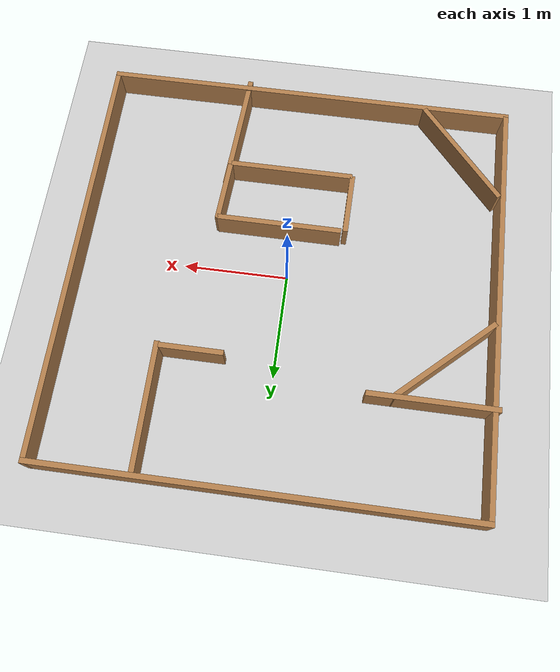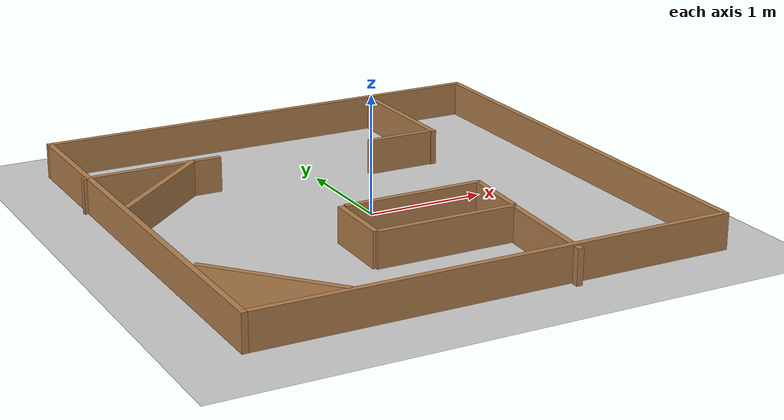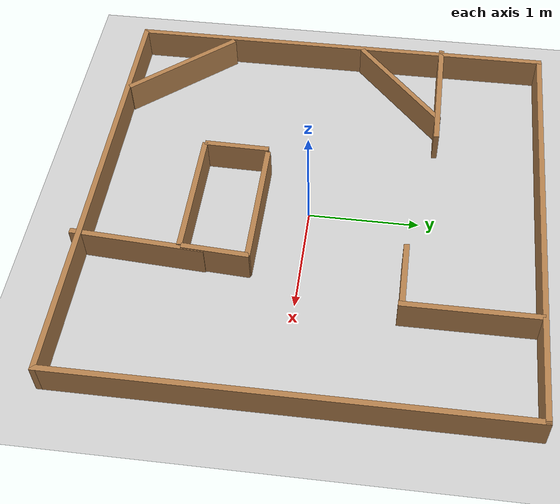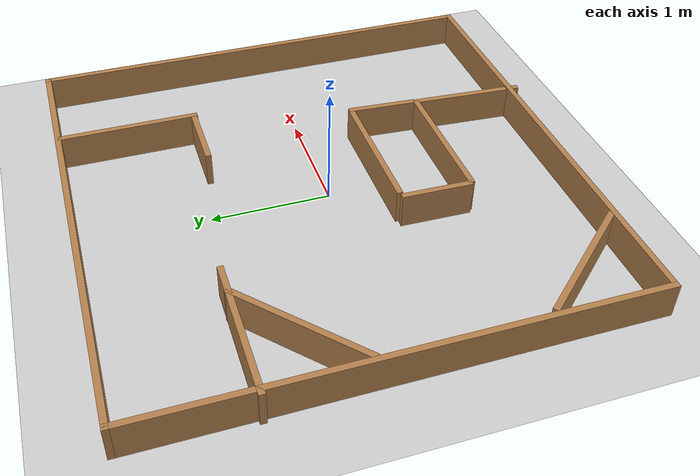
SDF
<sdf version="1.7">
 <world name="default">
  <light name="sun" type="directional">
   <pose>0 0 10 0 -0 0</pose>
   <diffuse>0.8 0.8 0.8 1</diffuse>
   <specular>0.2 0.2 0.2 1</specular>
   <attenuation>
    <range>1000</range>
    <constant>0.9</constant>
    <linear>0.01</linear>
    <quadratic>0.001</quadratic>
   </attenuation>
   <direction>-0.5 0.1 -0.9</direction>
   <spot><inner_angle>0</inner_angle><outer_angle>0</outer_angle><falloff>0</falloff></spot>
  </light>
  <model name="ground_plane">
   <static>1</static>
   <link name="link">
    <collision name="collision">
     <geometry><plane><normal>0 0 1</normal><size>100 100</size></plane></geometry>
     <surface>
      <contact><collide_bitmask>65535</collide_bitmask></contact>
      <friction><ode><mu>100</mu><mu2>50</mu2></ode></friction>
     </surface>
    </collision>
    <visual name="visual">
     <cast_shadows>0</cast_shadows>
     <geometry><plane><normal>0 0 1</normal><size>100 100</size></plane></geometry>
     <material>
      <script><uri>file://media/materials/scripts/gazebo.material</uri><name>Gazebo/Grey</name></script>
     </material>
    </visual>
   </link>
  </model>
  <gravity>0 0 -9.8</gravity>
  <magnetic_field>6e-06 2.3e-05 -4.2e-05</magnetic_field>
  <atmosphere type="adiabatic"/>
  <physics type="ode">
   <max_step_size>0.001</max_step_size>
   <real_time_factor>1</real_time_factor>
   <real_time_update_rate>1000</real_time_update_rate>
  </physics>
  <scene><ambient>0.4 0.4 0.4 1</ambient><background>0.7 0.7 0.7 1</background><shadows>1</shadows></scene>
  <audio><device>default</device></audio>
  <spherical_coordinates>
   <surface_model>EARTH_WGS84</surface_model>
   <latitude_deg>0</latitude_deg>
   <longitude_deg>0</longitude_deg>
   <elevation>0</elevation>
   <heading_deg>0</heading_deg>
  </spherical_coordinates>
  <model name="square4m">
   <pose>0.013048 0.071618 0 0 -0 0</pose>
   <link name="Wall_10">
    <collision name="Wall_10_Collision">
     <geometry><box><size>4.05 0.05 0.3</size></box></geometry>
     <pose>0 0 0.15 0 -0 0</pose>
    </collision>
    <visual name="Wall_10_Visual">
     <pose>0 0 0.15 0 -0 0</pose>
     <geometry><box><size>4.05 0.05 0.3</size></box></geometry>
     <material>
      <script><uri>file://media/materials/scripts/gazebo.material</uri><name>Gazebo/Wood</name></script>
      <ambient>1 1 1 1</ambient>
     </material>
     <meta><layer>0</layer></meta>
    </visual>
    <pose>0 2 0 0 -0 0</pose>
   </link>
   <link name="Wall_12">
    <collision name="Wall_12_Collision">
     <geometry><box><size>4.05 0.05 0.3</size></box></geometry>
     <pose>0 0 0.15 0 -0 0</pose>
    </collision>
    <visual name="Wall_12_Visual">
     <pose>0 0 0.15 0 -0 0</pose>
     <geometry><box><size>4.05 0.05 0.3</size></box></geometry>
     <material>
      <script><uri>file://media/materials/scripts/gazebo.material</uri><name>Gazebo/Wood</name></script>
      <ambient>1 1 1 1</ambient>
     </material>
     <meta><layer>0</layer></meta>
    </visual>
    <pose>2 0 0 0 -0 -1.5708</pose>
   </link>
   <link name="Wall_14">
    <collision name="Wall_14_Collision">
     <geometry><box><size>4.05 0.05 0.3</size></box></geometry>
     <pose>0 0 0.15 0 -0 0</pose>
    </collision>
    <visual name="Wall_14_Visual">
     <pose>0 0 0.15 0 -0 0</pose>
     <geometry><box><size>4.05 0.05 0.3</size></box></geometry>
     <material>
      <script><uri>file://media/materials/scripts/gazebo.material</uri><name>Gazebo/Wood</name></script>
      <ambient>1 1 1 1</ambient>
     </material>
     <meta><layer>0</layer></meta>
    </visual>
    <pose>0 -2 0 0 -0 3.14159</pose>
   </link>
   <link name="Wall_8">
    <collision name="Wall_8_Collision">
     <geometry><box><size>4.05 0.05 0.3</size></box></geometry>
     <pose>0 0 0.15 0 -0 0</pose>
    </collision>
    <visual name="Wall_8_Visual">
     <pose>0 0 0.15 0 -0 0</pose>
     <geometry><box><size>4.05 0.05 0.3</size></box></geometry>
     <material>
      <script><uri>file://media/materials/scripts/gazebo.material</uri><name>Gazebo/Wood</name></script>
      <ambient>1 1 1 1</ambient>
     </material>
     <meta><layer>0</layer></meta>
    </visual>
    <pose>-2 0 0 0 -0 -1.5708</pose>
   </link>
   <static>1</static>
  </model>
  <model name="wall120cm">
   <pose>0.088382 -1.0353 0 0 -0 0</pose>
   <link name="Wall_11">
    <collision name="Wall_11_Collision">
     <geometry><box><size>1.2 0.05 0.3</size></box></geometry>
     <pose>0 0 0.15 0 -0 0</pose>
    </collision>
    <visual name="Wall_11_Visual">
     <pose>0 0 0.15 0 -0 0</pose>
     <geometry><box><size>1.2 0.05 0.3</size></box></geometry>
     <material>
      <script><uri>file://media/materials/scripts/gazebo.material</uri><name>Gazebo/Wood</name></script>
      <ambient>1 1 1 1</ambient>
     </material>
     <meta><layer>0</layer></meta>
    </visual>
   </link>
   <static>1</static>
  </model>
  <model name="wall60cm">
   <pose>0.713436 -0.720592 0 0 0 -1.63205</pose>
   <link name="Wall_4">
    <collision name="Wall_4_Collision">
     <geometry><box><size>0.6 0.05 0.3</size></box></geometry>
     <pose>0 0 0.15 0 -0 0</pose>
    </collision>
    <visual name="Wall_4_Visual">
     <pose>0 0 0.15 0 -0 0</pose>
     <geometry><box><size>0.6 0.05 0.3</size></box></geometry>
     <material>
      <script><uri>file://media/materials/scripts/gazebo.material</uri><name>Gazebo/Wood</name></script>
      <ambient>1 1 1 1</ambient>
     </material>
     <meta><layer>0</layer></meta>
    </visual>
   </link>
   <static>1</static>
  </model>
  <model name="wall120cm_0">
   <pose>0.13686 -0.437474 0 0 -0 0</pose>
   <link name="Wall_11">
    <collision name="Wall_11_Collision">
     <geometry><box><size>1.2 0.05 0.3</size></box></geometry>
     <pose>0 0 0.15 0 -0 0</pose>
    </collision>
    <visual name="Wall_11_Visual">
     <pose>0 0 0.15 0 -0 0</pose>
     <geometry><box><size>1.2 0.05 0.3</size></box></geometry>
     <material>
      <script><uri>file://media/materials/scripts/gazebo.material</uri><name>Gazebo/Wood</name></script>
      <ambient>1 1 1 1</ambient>
     </material>
     <meta><layer>0</layer></meta>
    </visual>
   </link>
   <static>1</static>
  </model>
  <model name="wall60cm_0">
   <pose>-0.507994 -0.737124 0 0 0 -1.59025</pose>
   <link name="Wall_4">
    <collision name="Wall_4_Collision">
     <geometry><box><size>0.6 0.05 0.3</size></box></geometry>
     <pose>0 0 0.15 0 -0 0</pose>
    </collision>
    <visual name="Wall_4_Visual">
     <pose>0 0 0.15 0 -0 0</pose>
     <geometry><box><size>0.6 0.05 0.3</size></box></geometry>
     <material>
      <script><uri>file://media/materials/scripts/gazebo.material</uri><name>Gazebo/Wood</name></script>
      <ambient>1 1 1 1</ambient>
     </material>
     <meta><layer>0</layer></meta>
    </visual>
   </link>
   <static>1</static>
  </model>
  <model name="wall120cm_1">
   <pose>-1.44222 1.09888 0 0 -0 0</pose>
   <link name="Wall_11">
    <collision name="Wall_11_Collision">
     <geometry><box><size>1.2 0.05 0.3</size></box></geometry>
     <pose>0 0 0.15 0 -0 0</pose>
    </collision>
    <visual name="Wall_11_Visual">
     <pose>0 0 0.15 0 -0 0</pose>
     <geometry><box><size>1.2 0.05 0.3</size></box></geometry>
     <material>
      <script><uri>file://media/materials/scripts/gazebo.material</uri><name>Gazebo/Wood</name></script>
      <ambient>1 1 1 1</ambient>
     </material>
     <meta><layer>0</layer></meta>
    </visual>
   </link>
   <static>1</static>
  </model>
  <model name="wall120cm_2">
   <pose>-1.52348 0.707319 0 0 -0 0.73702</pose>
   <link name="Wall_11">
    <collision name="Wall_11_Collision">
     <geometry><box><size>1.2 0.05 0.3</size></box></geometry>
     <pose>0 0 0.15 0 -0 0</pose>
    </collision>
    <visual name="Wall_11_Visual">
     <pose>0 0 0.15 0 -0 0</pose>
     <geometry><box><size>1.2 0.05 0.3</size></box></geometry>
     <material>
      <script><uri>file://media/materials/scripts/gazebo.material</uri><name>Gazebo/Wood</name></script>
      <ambient>1 1 1 1</ambient>
     </material>
     <meta><layer>0</layer></meta>
    </visual>
   </link>
   <static>1</static>
  </model>
  <model name="wall120cm_3">
   <pose>1.071 1.47073 0 0 0 -1.5692</pose>
   <link name="Wall_11">
    <collision name="Wall_11_Collision">
     <geometry><box><size>1.2 0.05 0.3</size></box></geometry>
     <pose>0 0 0.15 0 -0 0</pose>
    </collision>
    <visual name="Wall_11_Visual">
     <pose>0 0 0.15 0 -0 0</pose>
     <geometry><box><size>1.2 0.05 0.3</size></box></geometry>
     <material>
      <script><uri>file://media/materials/scripts/gazebo.material</uri><name>Gazebo/Wood</name></script>
      <ambient>1 1 1 1</ambient>
     </material>
     <meta><layer>0</layer></meta>
    </visual>
   </link>
   <static>1</static>
  </model>
  <model name="wall60cm_1">
   <pose>0.756653 0.903843 0 0 -0 0</pose>
   <link name="Wall_4">
    <collision name="Wall_4_Collision">
     <geometry><box><size>0.6 0.05 0.3</size></box></geometry>
     <pose>0 0 0.15 0 -0 0</pose>
    </collision>
    <visual name="Wall_4_Visual">
     <pose>0 0 0.15 0 -0 0</pose>
     <geometry><box><size>0.6 0.05 0.3</size></box></geometry>
     <material>
      <script><uri>file://media/materials/scripts/gazebo.material</uri><name>Gazebo/Wood</name></script>
      <ambient>1 1 1 1</ambient>
     </material>
     <meta><layer>0</layer></meta>
    </visual>
   </link>
   <static>1</static>
  </model>
  <model name="wall120cm_4">
   <pose>-1.55712 -1.45688 0 0 0 -0.857979</pose>
   <link name="Wall_11">
    <collision name="Wall_11_Collision">
     <geometry><box><size>1.2 0.05 0.3</size></box></geometry>
     <pose>0 0 0.15 0 -0 0</pose>
    </collision>
    <visual name="Wall_11_Visual">
     <pose>0 0 0.15 0 -0 0</pose>
     <geometry><box><size>1.2 0.05 0.3</size></box></geometry>
     <material>
      <script><uri>file://media/materials/scripts/gazebo.material</uri><name>Gazebo/Wood</name></script>
      <ambient>1 1 1 1</ambient>
     </material>
     <meta><layer>0</layer></meta>
    </visual>
   </link>
   <static>1</static>
  </model>
  <model name="wall120cm_5">
   <pose>0.678889 -1.41656 -0.011606 0 -0 1.50983</pose>
   <link name="Wall_11">
    <collision name="Wall_11_Collision">
     <geometry><box><size>1.2 0.05 0.3</size></box></geometry>
     <pose>0 0 0.15 0 -0 0</pose>
    </collision>
    <visual name="Wall_11_Visual">
     <pose>0 0 0.15 0 -0 0</pose>
     <geometry><box><size>1.2 0.05 0.3</size></box></geometry>
     <material>
      <script><uri>file://media/materials/scripts/gazebo.material</uri><name>Gazebo/Wood</name></script>
      <ambient>1 1 1 1</ambient>
     </material>
     <meta><layer>0</layer></meta>
    </visual>
   </link>
   <static>1</static>
  </model>
 </world>
</sdf>
